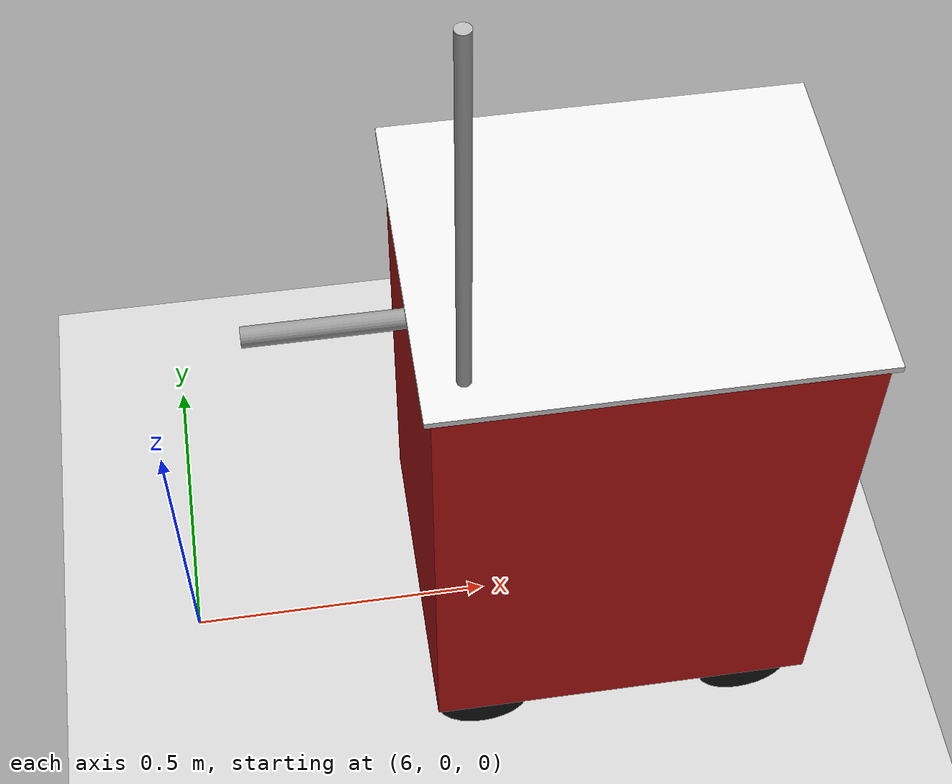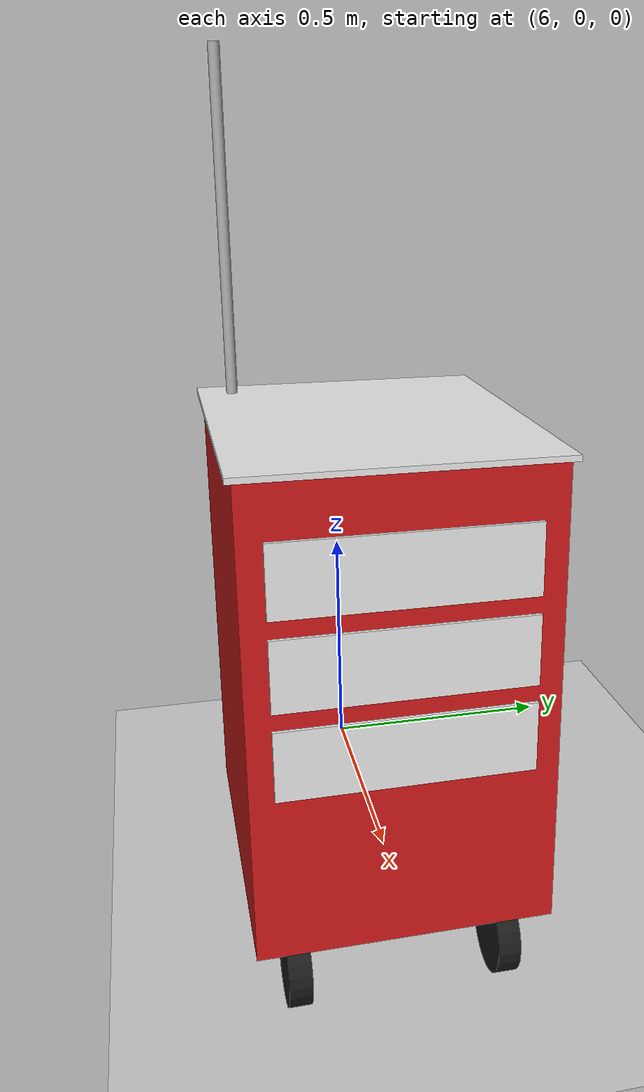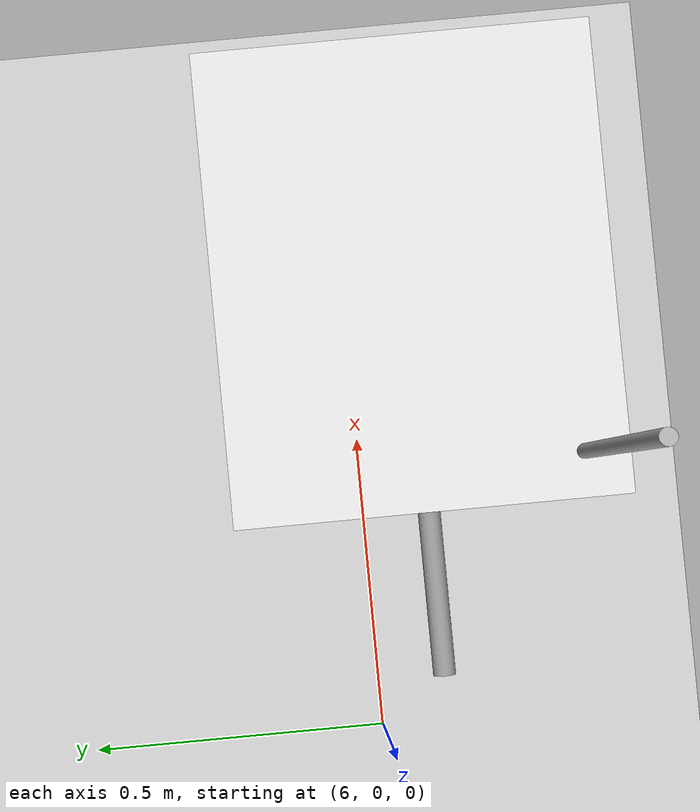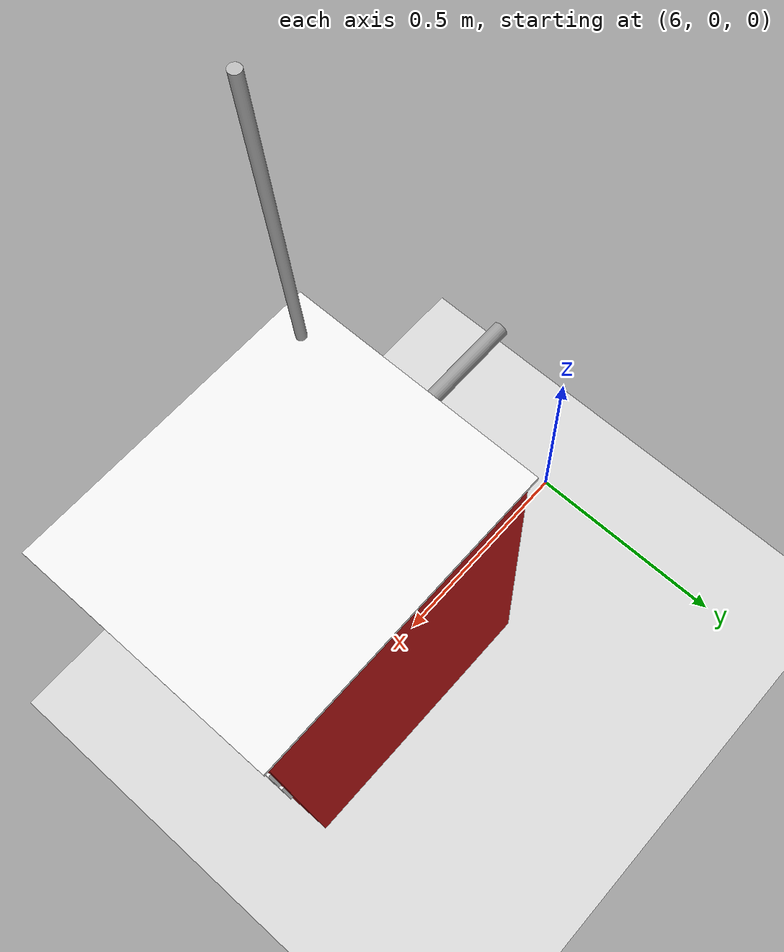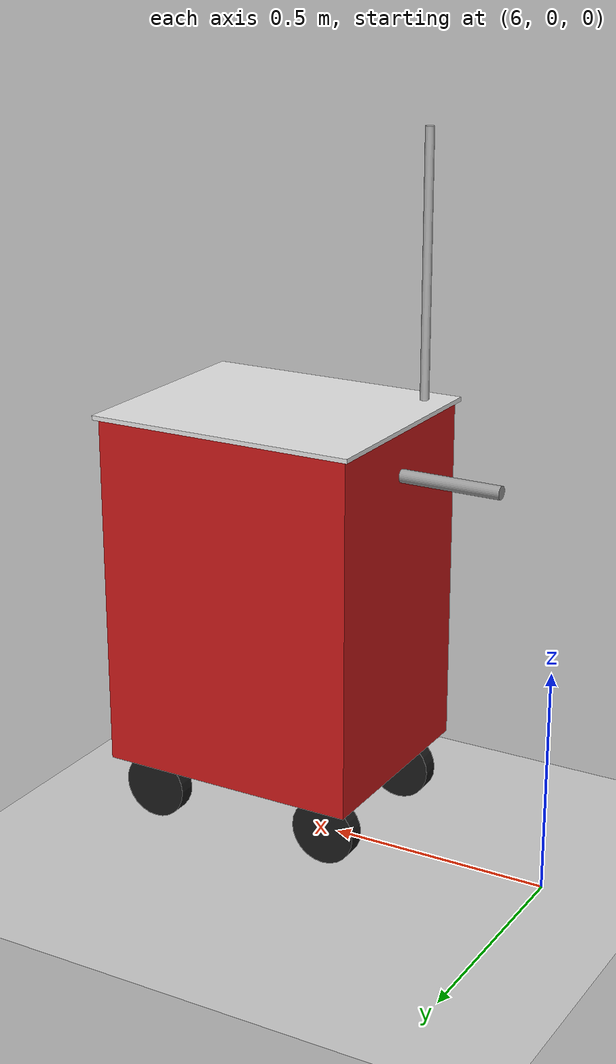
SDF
<sdf version="1.7">
 <world name="default">
  <model name="ground_plane">
   <static>1</static>
   <link name="link">
    <collision name="collision">
     <geometry><plane><normal>0 0 1</normal><size>100 100</size></plane></geometry>
     <surface><friction><ode><mu>100</mu><mu2>50</mu2></ode></friction></surface>
    </collision>
    <visual name="visual">
     <cast_shadows>0</cast_shadows>
     <geometry><plane><normal>0 0 1</normal><size>100 100</size></plane></geometry>
     <material>
      <script><uri>file://media/materials/scripts/gazebo.material</uri><name>Gazebo/Grey</name></script>
     </material>
    </visual>
   </link>
  </model>
  <model name="medical_cart_0">
   <static>0</static>
   <link name="chassis">
    <pose>0 0 0.55 0 -0 0</pose>
    <inertial>
     <mass>25</mass>
     <inertia><ixx>1.2</ixx><ixy>0</ixy><ixz>0</ixz><iyy>1.2</iyy><iyz>0</iyz><izz>0.8</izz></inertia>
    </inertial>
    <collision name="body_collision"><geometry><box><size>0.6 0.5 0.8</size></box></geometry></collision>
    <visual name="body_visual">
     <geometry><box><size>0.6 0.5 0.8</size></box></geometry>
     <material>
      <ambient>0.8 0.1 0.1 1</ambient>
      <diffuse>0.8 0.1 0.1 1</diffuse>
      <specular>0.5 0.5 0.5 1</specular>
     </material>
    </visual>
    <visual name="top_visual">
     <pose>0 0 0.405 0 -0 0</pose>
     <geometry><box><size>0.62 0.52 0.01</size></box></geometry>
     <material><ambient>0.9 0.9 0.9 1</ambient><diffuse>0.9 0.9 0.9 1</diffuse></material>
    </visual>
    <visual name="drawer_1">
     <pose>0.301 0 0.25 0 -0 0</pose>
     <geometry><box><size>0.01 0.42 0.12</size></box></geometry>
     <material><ambient>0.9 0.9 0.9 1</ambient><diffuse>0.9 0.9 0.9 1</diffuse></material>
    </visual>
    <visual name="drawer_2">
     <pose>0.301 0 0.1 0 -0 0</pose>
     <geometry><box><size>0.01 0.42 0.12</size></box></geometry>
     <material><ambient>0.9 0.9 0.9 1</ambient><diffuse>0.9 0.9 0.9 1</diffuse></material>
    </visual>
    <visual name="drawer_3">
     <pose>0.301 0 -0.05 0 -0 0</pose>
     <geometry><box><size>0.01 0.42 0.12</size></box></geometry>
     <material><ambient>0.9 0.9 0.9 1</ambient><diffuse>0.9 0.9 0.9 1</diffuse></material>
    </visual>
    <collision name="handle_collision">
     <pose>-0.33 0 0.3 0 1.5707 0</pose>
     <geometry><cylinder><radius>0.015</radius><length>0.4</length></cylinder></geometry>
    </collision>
    <visual name="handle_visual">
     <pose>-0.33 0 0.3 0 1.5707 0</pose>
     <geometry><cylinder><radius>0.015</radius><length>0.4</length></cylinder></geometry>
     <material><ambient>0.6 0.6 0.6 1</ambient><diffuse>0.6 0.6 0.6 1</diffuse></material>
    </visual>
    <collision name="iv_pole_collision">
     <pose>-0.25 -0.2 0.7 0 -0 0</pose>
     <geometry><cylinder><radius>0.01</radius><length>0.6</length></cylinder></geometry>
    </collision>
    <visual name="iv_pole_visual">
     <pose>-0.25 -0.2 0.7 0 -0 0</pose>
     <geometry><cylinder><radius>0.01</radius><length>0.6</length></cylinder></geometry>
     <material><ambient>0.7 0.7 0.7 1</ambient><diffuse>0.7 0.7 0.7 1</diffuse></material>
    </visual>
   </link>
   <link name="wheel_fl">
    <pose>0.22 0.18 0.075 -0 1.5707 1.5707</pose>
    <collision name="collision">
     <geometry><cylinder><radius>0.075</radius><length>0.04</length></cylinder></geometry>
     <surface><friction><ode><mu>1</mu><mu2>1</mu2></ode></friction></surface>
    </collision>
    <visual name="visual">
     <geometry><cylinder><radius>0.075</radius><length>0.04</length></cylinder></geometry>
     <material><ambient>0.1 0.1 0.1 1</ambient><diffuse>0.1 0.1 0.1 1</diffuse></material>
    </visual>
    <inertial>
     <inertia><ixx>1</ixx><ixy>0</ixy><ixz>0</ixz><iyy>1</iyy><iyz>0</iyz><izz>1</izz></inertia>
     <mass>1</mass>
    </inertial>
   </link>
   <link name="wheel_fr">
    <pose>0.22 -0.18 0.075 -0 1.5707 1.5707</pose>
    <collision name="collision">
     <geometry><cylinder><radius>0.075</radius><length>0.04</length></cylinder></geometry>
     <surface><friction><ode><mu>1</mu><mu2>1</mu2></ode></friction></surface>
    </collision>
    <visual name="visual">
     <geometry><cylinder><radius>0.075</radius><length>0.04</length></cylinder></geometry>
     <material><ambient>0.1 0.1 0.1 1</ambient><diffuse>0.1 0.1 0.1 1</diffuse></material>
    </visual>
    <inertial>
     <inertia><ixx>1</ixx><ixy>0</ixy><ixz>0</ixz><iyy>1</iyy><iyz>0</iyz><izz>1</izz></inertia>
     <mass>1</mass>
    </inertial>
   </link>
   <link name="wheel_bl">
    <pose>-0.22 0.18 0.075 -0 1.5707 1.5707</pose>
    <collision name="collision">
     <geometry><cylinder><radius>0.075</radius><length>0.04</length></cylinder></geometry>
     <surface><friction><ode><mu>1</mu><mu2>1</mu2></ode></friction></surface>
    </collision>
    <visual name="visual">
     <geometry><cylinder><radius>0.075</radius><length>0.04</length></cylinder></geometry>
     <material><ambient>0.1 0.1 0.1 1</ambient><diffuse>0.1 0.1 0.1 1</diffuse></material>
    </visual>
    <inertial>
     <inertia><ixx>1</ixx><ixy>0</ixy><ixz>0</ixz><iyy>1</iyy><iyz>0</iyz><izz>1</izz></inertia>
     <mass>1</mass>
    </inertial>
   </link>
   <link name="wheel_br">
    <pose>-0.22 -0.18 0.075 -0 1.5707 1.5707</pose>
    <collision name="collision">
     <geometry><cylinder><radius>0.075</radius><length>0.04</length></cylinder></geometry>
     <surface><friction><ode><mu>1</mu><mu2>1</mu2></ode></friction></surface>
    </collision>
    <visual name="visual">
     <geometry><cylinder><radius>0.075</radius><length>0.04</length></cylinder></geometry>
     <material><ambient>0.1 0.1 0.1 1</ambient><diffuse>0.1 0.1 0.1 1</diffuse></material>
    </visual>
    <inertial>
     <inertia><ixx>1</ixx><ixy>0</ixy><ixz>0</ixz><iyy>1</iyy><iyz>0</iyz><izz>1</izz></inertia>
     <mass>1</mass>
    </inertial>
   </link>
   <joint name="joint_fl" type="revolute">
    <parent>chassis</parent>
    <child>wheel_fl</child>
    <axis>
     <xyz>0 0 1</xyz>
     <limit><lower>-1e+16</lower><upper>1e+16</upper></limit>
     <dynamics><spring_reference>0</spring_reference><spring_stiffness>0</spring_stiffness></dynamics>
    </axis>
   </joint>
   <joint name="joint_fr" type="revolute">
    <parent>chassis</parent>
    <child>wheel_fr</child>
    <axis>
     <xyz>0 0 1</xyz>
     <limit><lower>-1e+16</lower><upper>1e+16</upper></limit>
     <dynamics><spring_reference>0</spring_reference><spring_stiffness>0</spring_stiffness></dynamics>
    </axis>
   </joint>
   <joint name="joint_bl" type="revolute">
    <parent>chassis</parent>
    <child>wheel_bl</child>
    <axis>
     <xyz>0 0 1</xyz>
     <limit><lower>-1e+16</lower><upper>1e+16</upper></limit>
     <dynamics><spring_reference>0</spring_reference><spring_stiffness>0</spring_stiffness></dynamics>
    </axis>
   </joint>
   <joint name="joint_br" type="revolute">
    <parent>chassis</parent>
    <child>wheel_br</child>
    <axis>
     <xyz>0 0 1</xyz>
     <limit><lower>-1e+16</lower><upper>1e+16</upper></limit>
     <dynamics><spring_reference>0</spring_reference><spring_stiffness>0</spring_stiffness></dynamics>
    </axis>
   </joint>
   <pose>6.68253 -0.059133 2e-06 -1e-06 0 0.001091</pose>
  </model>
 </world>
</sdf>
